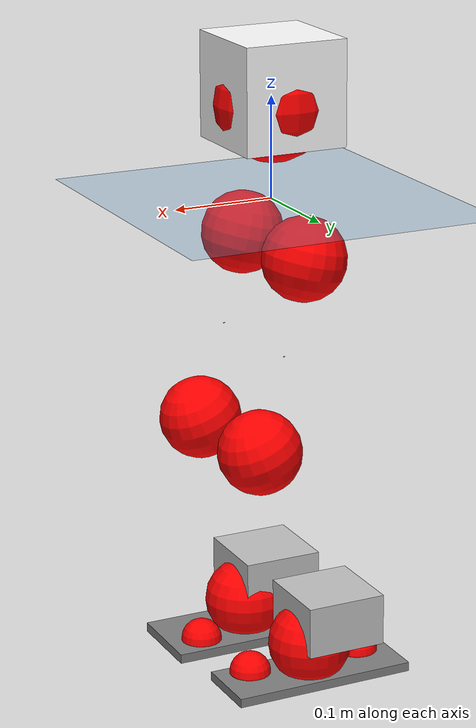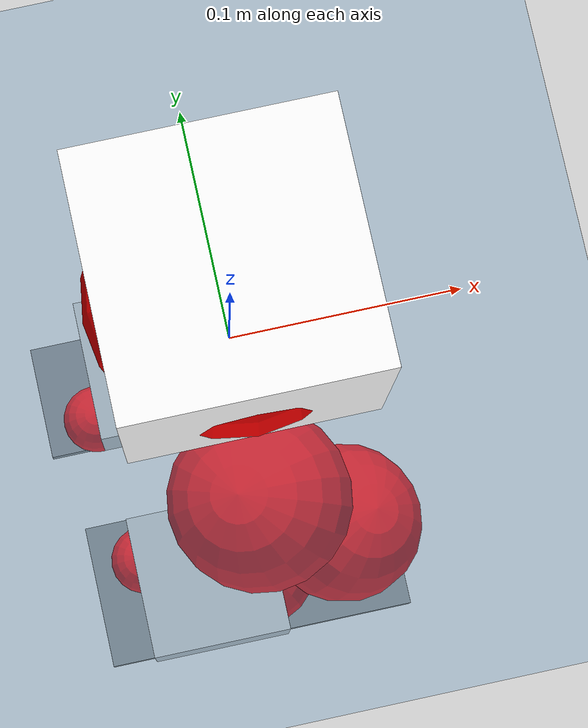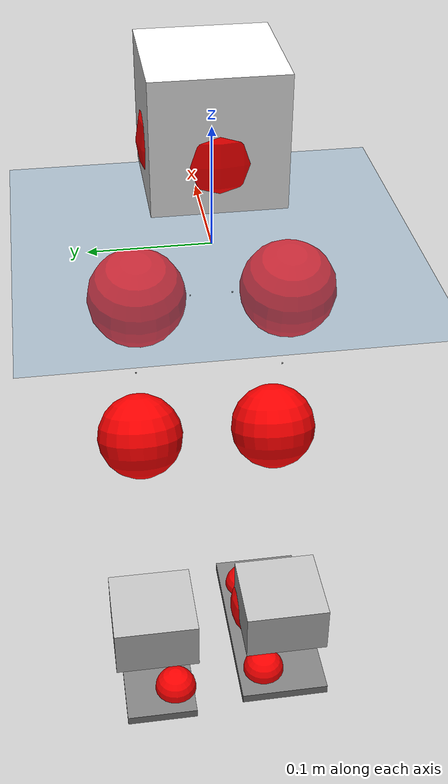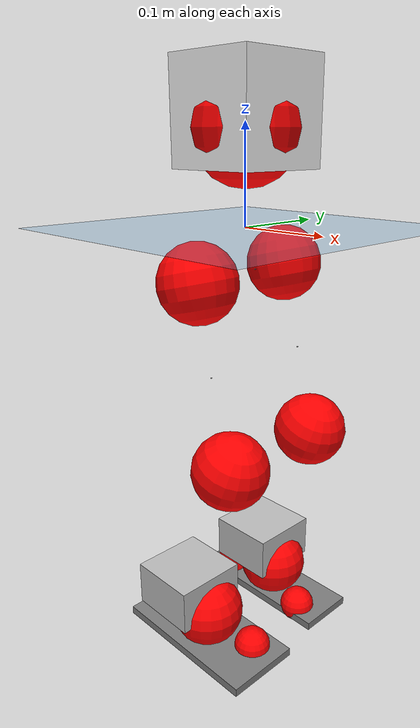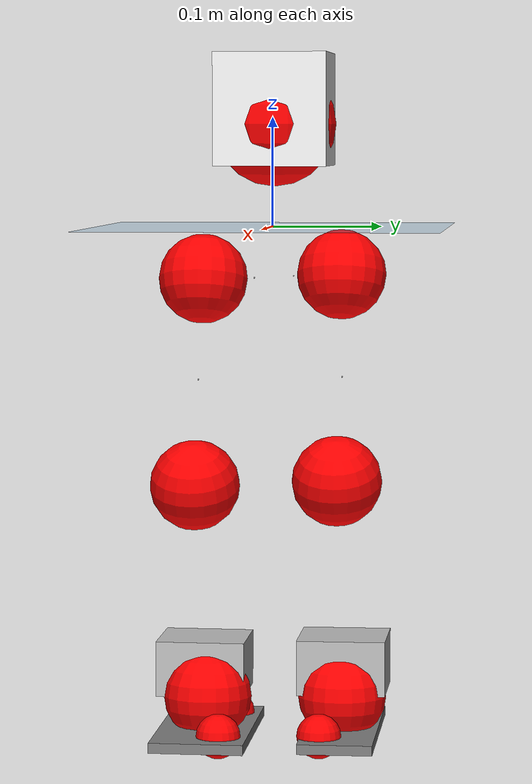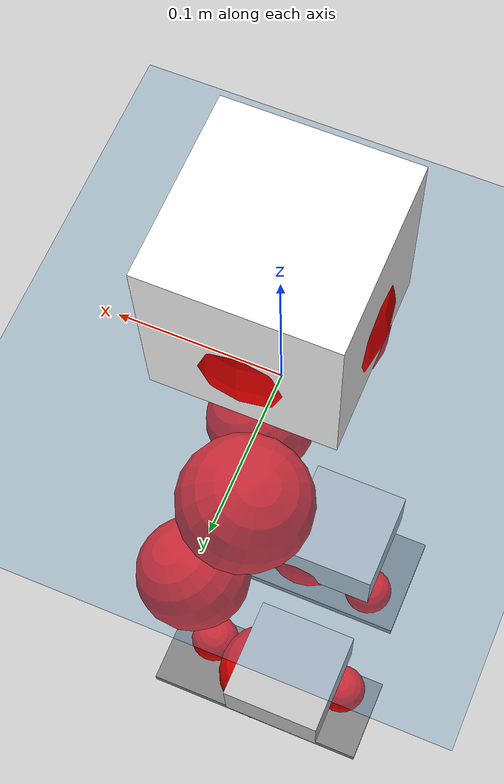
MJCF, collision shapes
<mujoco model="pi_12dof_release_v1">
  <compiler angle="radian" assetdir="assets" balanceinertia="true" inertiafromgeom="false"/>

  <option timestep="0.005" density="1.2" viscosity="2e-05"/>

  <size nkey="1"/>

  <visual>
    <quality shadowsize="8192"/>
    <map shadowclip="0.5"/>
  </visual>

  <default>
    <default class="/">
      <joint armature="0.01" damping="0.01" frictionloss="0.01"/>
      <geom contype="0" conaffinity="0" group="1" solref="-1000 -80"/>
      <site size="0.01 0.005 0.005" group="5"/>
      <general forcelimited="true" biastype="affine" gainprm="20" biasprm="0 -20 -0.5"/>
      <default class="foot">
        <geom size="0.0845 0.036 0.005" type="box" condim="6" group="4" priority="1" friction="0.9 0.2 0.2" solimp="0.015 1 0.005"/>
      </default>
      <default class="reward_collision_sphere">
        <geom group="5" rgba="1 0 0 1"/>
      </default>
    </default>
  </default>

  <asset>
    <texture type="skybox" colorspace="auto" name="//unnamed_texture_0" builtin="gradient" rgb1="0.95 0.95 0.95" rgb2="0.95 0.95 0.95" width="100" height="600"/>
    <texture type="2d" colorspace="auto" name="texplane" builtin="checker" rgb1="0.345 0.575 0.748" rgb2="0.345 0.575 0.748" markrgb="1 1 1" width="512" height="512"/>
    <material name="MatPlane" class="/" texture="texplane" texuniform="true" texrepeat="2 2" specular="0.9"/>
    <mesh name="baselink_1" class="/" file="baselink_1.STL"/>
    <mesh name="r_hip_pitch_link" class="/" file="r_hip_pitch_link.STL"/>
    <mesh name="r_hip_roll_link" class="/" file="r_hip_roll_link.STL"/>
    <mesh name="r_thigh_link" class="/" file="r_thigh_link.STL"/>
    <mesh name="r_calf_link" class="/" file="r_calf_link.STL"/>
    <mesh name="r_ankle_pitch_link" class="/" file="r_ankle_pitch_link.STL"/>
    <mesh name="r_ankle_roll_link" class="/" file="r_ankle_roll_link.STL"/>
    <mesh name="l_hip_pitch_link" class="/" file="l_hip_pitch_link.STL"/>
    <mesh name="l_hip_roll_link" class="/" file="l_hip_roll_link.STL"/>
    <mesh name="l_thigh_link" class="/" file="l_thigh_link.STL"/>
    <mesh name="l_calf_link" class="/" file="l_calf_link.STL"/>
    <mesh name="l_ankle_pitch_link" class="/" file="l_ankle_pitch_link.STL"/>
    <mesh name="l_ankle_roll_link" class="/" file="l_ankle_roll_link.STL"/>
  </asset>

  <worldbody>
    <geom name="floor" class="/" size="100 100 0.125" type="plane" group="0" material="MatPlane"/>
    <light name="toplight_shadow" class="/" pos="0 0 5" dir="0.0990148 0.0990148 -0.990148" type="directional" ambient="0.04 0.04 0.04" diffuse="0.55 0.55 0.55" specular="0.12 0.12 0.12"/>
    <light name="toplight_fill" class="/" pos="0 0 5" dir="0.0990148 0.0990148 -0.990148" type="directional" castshadow="false" ambient="0.04 0.04 0.04" diffuse="0.3 0.3 0.3" specular="0.08 0.08 0.08"/>
    <body name="trunk" pos="-0.000858435 0.0014628 -0.00225119" quat="1 0.000142052 0.000729244 2.66311e-05">
      <inertial pos="-3.37451e-05 0.00154539 0.0553681" quat="0.695168 0.00929087 0.00982969 0.71872" mass="2.40332" diaginertia="0.00512868 0.00371947 0.019559"/>
      <joint name="//unnamed_joint_0" type="free"/>
      <geom name="//unnamed_geom_1" class="/" type="mesh" density="0" rgba="1 1 1 1" mesh="baselink_1"/>
      <geom name="//unnamed_geom_2" class="/" size="0.051414 0.051414 0.051414" pos="0 0 0.109344" type="box" rgba="1 1 1 1"/>
      <geom name="//unnamed_geom_3" class="reward_collision_sphere" size="0.0565554" pos="0 0 0.0956756"/>
      <site name="imu" class="/" pos="0.00995518 0.0162585 -0.0134252" size="0.0102828"/>
      <camera name="track" class="/" pos="0 -1.67591 0" quat="0.707107 0.707107 0 0" mode="trackcom"/>
      <camera name="ego_camera" class="/" pos="0.0660067 0 0.246023" quat="-0.5 -0.5 0.5 0.5"/>
      <body name="r_hip_pitch_link" pos="0.000121324 -0.0188273 -0.0449311" quat="0.992175 -0.00144879 -0.124847 0.000169355">
        <inertial pos="-0.00139303 -0.0473814 -0.00153524" quat="-0.017345 0.703777 -0.0282523 0.709647" mass="0.394545" diaginertia="5.59581e-05 3.94192e-05 0.000398202"/>
        <joint name="r_hip_pitch_joint" class="/" pos="0 0 0" axis="-0.00285277 -0.999962 -0.00828079" stiffness="0.00847239" range="-1.76931 1.25993" armature="0.00921699" damping="0.0290035" frictionloss="0.01162"/>
        <geom name="//unnamed_geom_4" class="/" type="mesh" density="0" rgba="0.75294 0.75294 0.75294 1" mesh="r_hip_pitch_link"/>
        <geom name="//unnamed_geom_5" class="/" size="0.00051414 0.00051414 0.00051414" type="box" rgba="0.75294 0.75294 0.75294 1"/>
        <body name="r_hip_roll_link" pos="0.000206905 -0.0473638 -0.00124355" quat="1 -0.000188408 -0.000463549 -0.000304653">
          <inertial pos="-0.00101172 0.00172304 -0.0799586" quat="0.698624 -0.0831539 -0.0758497 0.706581" mass="0.41129" diaginertia="0.000179951 0.000111644 0.000626418"/>
          <joint name="r_hip_roll_joint" class="/" pos="0 0 0" axis="-0.999993 -0.00324767 0.00183767" range="-0.0991998 0.468852" armature="0.0117718" damping="0" frictionloss="0.00890206"/>
          <geom name="//unnamed_geom_6" class="/" type="mesh" density="0" rgba="0.75294 0.75294 0.75294 1" mesh="r_hip_roll_link"/>
          <geom name="//unnamed_geom_7" class="/" size="0.00051414 0.00051414 0.00051414" type="box" rgba="0.75294 0.75294 0.75294 1"/>
          <geom name="//unnamed_geom_8" class="reward_collision_sphere" size="0.0411312"/>
          <body name="r_thigh_link" pos="-0.00375523 -0.00216557 -0.0936905" quat="1 -0.000266354 -0.000253678 -0.000274162">
            <inertial pos="-0.00191054 -0.00106483 -0.0637963" quat="0.737157 0.675721 0.00025813 -0.000394885" mass="0.118854" diaginertia="6.61045e-05 3.7536e-05 0.000273766"/>
            <joint name="r_thigh_joint" class="/" pos="0 0 0" axis="-0.00408803 0.00727808 -0.999965" range="-0.250184 0.639064" armature="0.0113685" damping="0" frictionloss="0.0119891"/>
            <geom name="//unnamed_geom_9" class="/" type="mesh" density="0" rgba="0.75294 0.75294 0.75294 1" mesh="r_thigh_link"/>
            <geom name="//unnamed_geom_10" class="/" size="0.00051414 0.00051414 0.00051414" type="box" rgba="0.75294 0.75294 0.75294 1"/>
            <body name="r_calf_link" pos="0.00253182 0.000483785 -0.0981585" quat="0.947654 -1.42194e-05 0.319298 -5.98322e-06">
              <inertial pos="-0.00339021 -0.00201554 -0.0959221" quat="0.99991 -0.00749371 -0.00394942 0.0103865" mass="0.862598" diaginertia="0.00176266 0.00145463 0.000831248"/>
              <joint name="r_calf_joint" class="/" pos="0 0 0" axis="-0.00681721 -0.999907 0.0117961" stiffness="0.00711208" range="-1.6801 0.640822" armature="0.0101563" damping="0.0150159" frictionloss="0.0107141"/>
              <geom name="//unnamed_geom_11" class="/" type="mesh" density="0" rgba="0.75294 0.75294 0.75294 1" mesh="r_calf_link"/>
              <geom name="//unnamed_geom_12" class="/" size="0.00051414 0.00051414 0.00051414" type="box" rgba="0.75294 0.75294 0.75294 1"/>
              <geom name="//unnamed_geom_13" class="reward_collision_sphere" size="0.0411312"/>
              <body name="r_ankle_pitch_link" pos="0.00217397 0.000318702 -0.191025" quat="0.98018 -0.00105858 -0.198105 -0.000918989">
                <inertial pos="0.00534682 0.00308375 0.00208824" quat="-0.0083786 0.710246 0.0108761 0.703819" mass="0.192891" diaginertia="0.000154271 8.91779e-05 0.000556157"/>
                <joint name="r_ankle_pitch_joint" class="/" pos="0 0 0" axis="0.0122073 -0.999925 -0.000780274" stiffness="0.00961709" range="-1.29955 0.445859" armature="0.0102453" damping="0.0138089" frictionloss="0.00987082"/>
                <geom name="//unnamed_geom_14" class="/" type="mesh" density="0" rgba="0.75294 0.75294 0.75294 1" mesh="r_ankle_pitch_link"/>
                <geom name="//unnamed_geom_15" class="/" size="0.0401029 0.0411312 0.025707" type="box" rgba="0.75294 0.75294 0.75294 1"/>
                <body name="r_ankle_roll_link" pos="0.0704105 0.00610372 0.00191999" quat="1 9.13364e-05 -0.000205437 0.000577928">
                  <inertial pos="-0.0195336 -0.000704573 -0.0233373" quat="0.562351 0.42407 0.42965 0.56509" mass="0.58689" diaginertia="0.000644392 0.000427888 0.0014349"/>
                  <joint name="r_ankle_roll_joint" class="/" pos="0 0 0" axis="-0.999977 0.00392111 0.0055366" stiffness="0.00709056" range="-0.125767 0.167973" armature="0.0113028" damping="0.00462138" frictionloss="0.00925135"/>
                  <geom name="//unnamed_geom_16" class="/" type="mesh" density="0" rgba="0.75294 0.75294 0.75294 1" mesh="r_ankle_roll_link"/>
                  <geom name="//unnamed_geom_17" class="/" type="mesh" rgba="0.75294 0.75294 0.75294 1" mesh="r_ankle_roll_link"/>
                  <geom name="right_foot" class="foot" size="0.0927128 0.0430676 0.00468389" pos="-0.0448846 0 -0.060139"/>
                  <geom name="//unnamed_geom_19" class="reward_collision_sphere" size="0.0411312" pos="-0.0440045 0 -0.0273359"/>
                  <geom name="//unnamed_geom_20" class="reward_collision_sphere" size="0.0205656" pos="0.0132013 0.0167591 -0.0546718"/>
                  <geom name="//unnamed_geom_21" class="reward_collision_sphere" size="0.0205656" pos="-0.105611 0.0167591 -0.0546718"/>
                  <site name="right_foot" class="foot" pos="-0.0448846 0 -0.060139" size="0.0102828"/>
                </body>
              </body>
            </body>
          </body>
        </body>
      </body>
      <body name="l_hip_pitch_link" pos="-0.00271141 0.0170998 -0.043194" quat="0.992186 0.000394035 -0.124767 -0.000673622">
        <inertial pos="0.000814219 0.0442247 0.00108914" quat="-0.0346632 0.70425 0.0344929 0.708266" mass="0.410338" diaginertia="6.62013e-05 4.21697e-05 0.000475775"/>
        <joint name="l_hip_pitch_joint" class="/" pos="0 0 0" axis="0.00733033 0.999968 0.00312373" stiffness="0.00242857" range="-1.23496 1.75882" armature="0.0105373" damping="0.0166078" frictionloss="0.00946815"/>
        <geom name="//unnamed_geom_22" class="/" type="mesh" density="0" rgba="0.75294 0.75294 0.75294 1" mesh="l_hip_pitch_link"/>
        <geom name="//unnamed_geom_23" class="/" size="0.00051414 0.00051414 0.00051414" type="box" rgba="0.75294 0.75294 0.75294 1"/>
        <body name="l_hip_roll_link" pos="0.000696705 0.0444099 0.00144106" quat="1 -0.000316962 0.000159099 -0.000417884">
          <inertial pos="-0.00053241 0.00252527 -0.0799685" quat="0.699365 -0.0701282 -0.0752034 0.707329" mass="0.425486" diaginertia="0.000185981 0.000117305 0.000644208"/>
          <joint name="l_hip_roll_joint" class="/" pos="0 0 0" axis="-0.999997 -0.000776079 -0.00230155" stiffness="0.00965954" range="-0.461994 0.119681" armature="0.00920144" damping="0.0199072" frictionloss="0.0103806"/>
          <geom name="//unnamed_geom_24" class="/" type="mesh" density="0" rgba="0.75294 0.75294 0.75294 1" mesh="l_hip_roll_link"/>
          <geom name="//unnamed_geom_25" class="/" size="0.00051414 0.00051414 0.00051414" type="box" rgba="0.75294 0.75294 0.75294 1"/>
          <geom name="//unnamed_geom_26" class="reward_collision_sphere" size="0.0411312"/>
          <body name="l_thigh_link" pos="-0.00144344 0.00220201 -0.0951178" quat="1 -0.000129905 -0.000103887 2.26897e-05">
            <inertial pos="0.00198077 -0.00287558 -0.0636906" quat="0.675388 0.737463 9.38209e-08 -2.96191e-06" mass="0.120964" diaginertia="6.56388e-05 4.01525e-05 0.000265365"/>
            <joint name="l_thigh_joint" class="/" pos="0 0 0" axis="0.00113752 -0.00357544 -0.999993" stiffness="0.0145967" range="-0.613875 0.256991" armature="0.0103812" damping="0.0100796" frictionloss="0.00967611"/>
            <geom name="//unnamed_geom_27" class="/" type="mesh" density="0" rgba="0.75294 0.75294 0.75294 1" mesh="l_thigh_link"/>
            <geom name="//unnamed_geom_28" class="/" size="0.00051414 0.00051414 0.00051414" type="box" rgba="0.75294 0.75294 0.75294 1"/>
            <body name="l_calf_link" pos="0.00062965 -0.00257522 -0.0963111" quat="0.947302 -0.000270931 0.320341 0.000162049">
              <inertial pos="-0.000179215 0.00190103 -0.0963442" quat="0.999978 0.00337665 -0.000565839 0.00570007" mass="0.943325" diaginertia="0.0018784 0.00145607 0.000864804"/>
              <joint name="l_calf_joint" class="/" pos="0 0 0" axis="-0.00537704 0.999977 -0.0040786" range="-0.708463 1.62447" armature="0.0101198" damping="0.0103714" frictionloss="0.0116673"/>
              <geom name="//unnamed_geom_29" class="/" type="mesh" density="0" rgba="0.75294 0.75294 0.75294 1" mesh="l_calf_link"/>
              <geom name="//unnamed_geom_30" class="/" size="0.00051414 0.00051414 0.00051414" type="box" rgba="0.75294 0.75294 0.75294 1"/>
              <geom name="//unnamed_geom_31" class="reward_collision_sphere" size="0.0411312"/>
              <body name="l_ankle_pitch_link" pos="0.00273881 0.000790918 -0.193672" quat="0.980096 3.6883e-05 -0.198524 -0.0002948">
                <inertial pos="0.00256937 0.000148553 -0.000283499" quat="-0.00233052 0.707608 0.000352481 0.706602" mass="0.192246" diaginertia="0.000167939 9.11088e-05 0.000572484"/>
                <joint name="l_ankle_pitch_joint" class="/" pos="0 0 0" axis="-0.00364708 0.999993 0.000446049" range="-0.477489 1.27203" armature="0.0102557" damping="0" frictionloss="0.0114668"/>
                <geom name="//unnamed_geom_32" class="/" type="mesh" density="0" rgba="0.75294 0.75294 0.75294 1" mesh="l_ankle_pitch_link"/>
                <geom name="//unnamed_geom_33" class="/" size="0.0401029 0.0411312 0.025707" type="box" rgba="0.75294 0.75294 0.75294 1"/>
                <body name="l_ankle_roll_link" pos="0.064097 1.59887e-05 -0.000780948" quat="0.999999 0.000194967 0.00078071 0.000721395">
                  <inertial pos="-0.0195951 -0.000575613 -0.0191524" quat="0.554202 0.435858 0.436277 0.559062" mass="0.551877" diaginertia="0.000571983 0.000417063 0.00133079"/>
                  <joint name="l_ankle_roll_joint" class="/" pos="0 0 0" axis="-0.999937 -0.0100306 0.00506789" range="-0.105679 0.152183" armature="0.0105151" damping="0.0150276" frictionloss="0.0102457"/>
                  <geom name="//unnamed_geom_34" class="/" type="mesh" density="0" rgba="0.75294 0.75294 0.75294 1" mesh="l_ankle_roll_link"/>
                  <geom name="//unnamed_geom_35" class="/" type="mesh" rgba="0.75294 0.75294 0.75294 1" mesh="l_ankle_roll_link"/>
                  <geom name="left_foot" class="foot" size="0.0924239 0.0343264 0.00454524" pos="-0.0448846 0 -0.060139"/>
                  <geom name="//unnamed_geom_37" class="reward_collision_sphere" size="0.0411312" pos="-0.0440045 0 -0.0273359"/>
                  <geom name="//unnamed_geom_38" class="reward_collision_sphere" size="0.0205656" pos="0.0132013 -0.0167591 -0.0546718"/>
                  <geom name="//unnamed_geom_39" class="reward_collision_sphere" size="0.0205656" pos="-0.105611 -0.0167591 -0.0546718"/>
                  <site name="left_foot" class="foot" pos="-0.0448846 0 -0.060139" size="0.0102828"/>
                </body>
              </body>
            </body>
          </body>
        </body>
      </body>
    </body>
  </worldbody>

  <contact>
    <pair class="/" geom1="floor" geom2="right_foot" name="//unnamed_contact_1"/>
    <pair class="/" geom1="floor" geom2="left_foot" name="//unnamed_contact_0"/>
  </contact>

  <actuator>
    <general name="r_hip_pitch_joint" class="/" joint="r_hip_pitch_joint" forcerange="-21.7647 21.7647" gainprm="21.0704" biasprm="0 -21.0704 -0.505621"/>
    <general name="r_hip_roll_joint" class="/" joint="r_hip_roll_joint" forcerange="-22.421 22.421" gainprm="21.0704" biasprm="0 -21.0704 -0.505621"/>
    <general name="r_thigh_joint" class="/" joint="r_thigh_joint" forcerange="-23.4221 23.4221" gainprm="21.0704" biasprm="0 -21.0704 -0.505621"/>
    <general name="r_calf_joint" class="/" joint="r_calf_joint" forcerange="-19.3733 19.3733" gainprm="21.0704" biasprm="0 -21.0704 -0.505621"/>
    <general name="r_ankle_pitch_joint" class="/" joint="r_ankle_pitch_joint" forcerange="-23.7211 23.7211" gainprm="21.0704" biasprm="0 -21.0704 -0.505621"/>
    <general name="r_ankle_roll_joint" class="/" joint="r_ankle_roll_joint" forcerange="-23.2209 23.2209" gainprm="21.0704" biasprm="0 -21.0704 -0.505621"/>
    <general name="l_hip_pitch_joint" class="/" joint="l_hip_pitch_joint" forcerange="-23.3974 23.3974" gainprm="21.0704" biasprm="0 -21.0704 -0.505621"/>
    <general name="l_hip_roll_joint" class="/" joint="l_hip_roll_joint" forcerange="-21.1841 21.1841" gainprm="21.0704" biasprm="0 -21.0704 -0.505621"/>
    <general name="l_thigh_joint" class="/" joint="l_thigh_joint" forcerange="-22.7299 22.7299" gainprm="21.0704" biasprm="0 -21.0704 -0.505621"/>
    <general name="l_calf_joint" class="/" joint="l_calf_joint" forcerange="-22.08 22.08" gainprm="21.0704" biasprm="0 -21.0704 -0.505621"/>
    <general name="l_ankle_pitch_joint" class="/" joint="l_ankle_pitch_joint" forcerange="-22.9321 22.9321" gainprm="21.0704" biasprm="0 -21.0704 -0.505621"/>
    <general name="l_ankle_roll_joint" class="/" joint="l_ankle_roll_joint" forcerange="-18.6834 18.6834" gainprm="21.0704" biasprm="0 -21.0704 -0.505621"/>
  </actuator>

  <sensor>
    <gyro site="imu" name="imu_angular_velocity"/>
    <velocimeter site="imu" name="imu_linear_velocity"/>
    <framelinvel objtype="site" objname="left_foot" name="left_foot_global_linear_velocity"/>
    <framelinvel objtype="site" objname="right_foot" name="right_foot_global_linear_velocity"/>
  </sensor>

  <keyframe>
    <key name="home" qpos="0 0 0.291 1 0 0 0 0.4 0 0 -0.8 0.4 0 -0.4 0 0 0.8 -0.4 0"/>
  </keyframe>
</mujoco>
